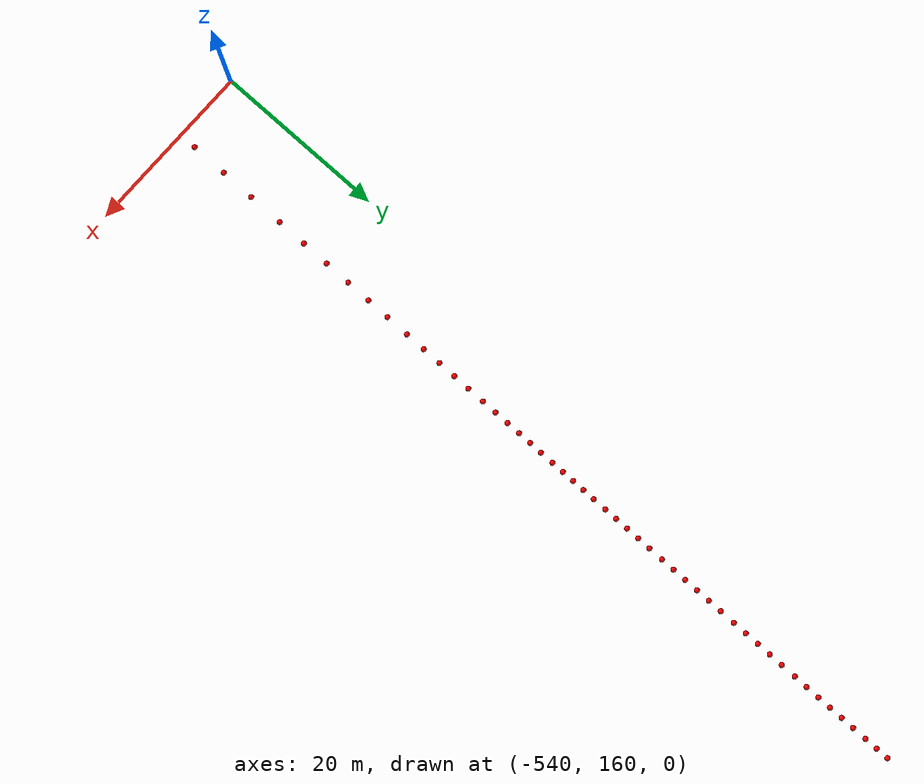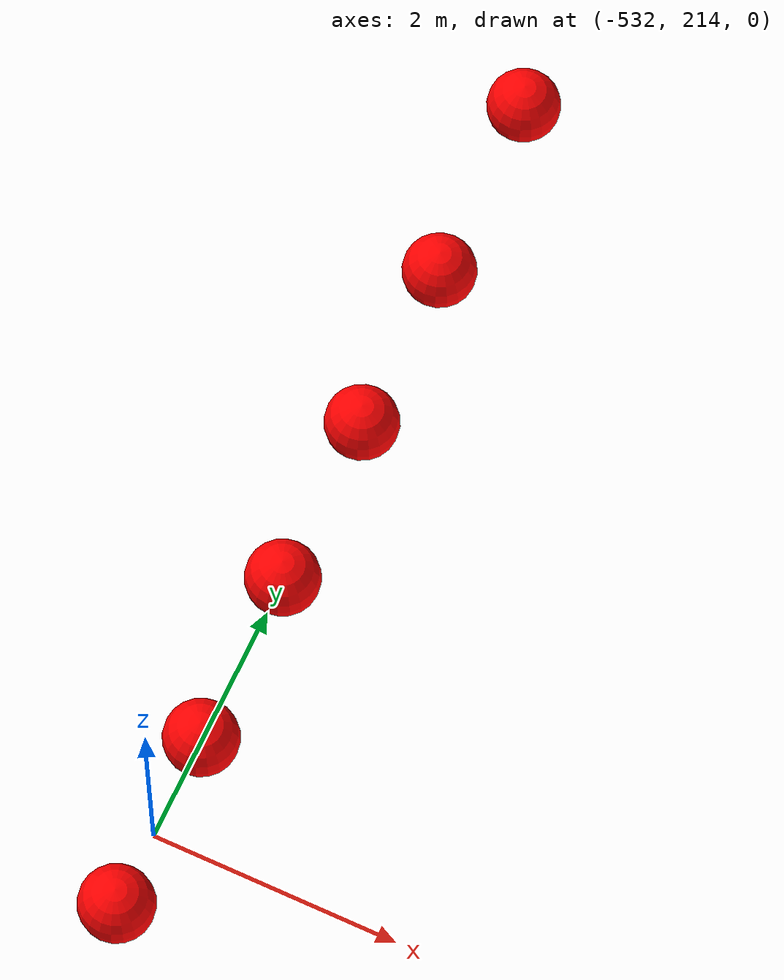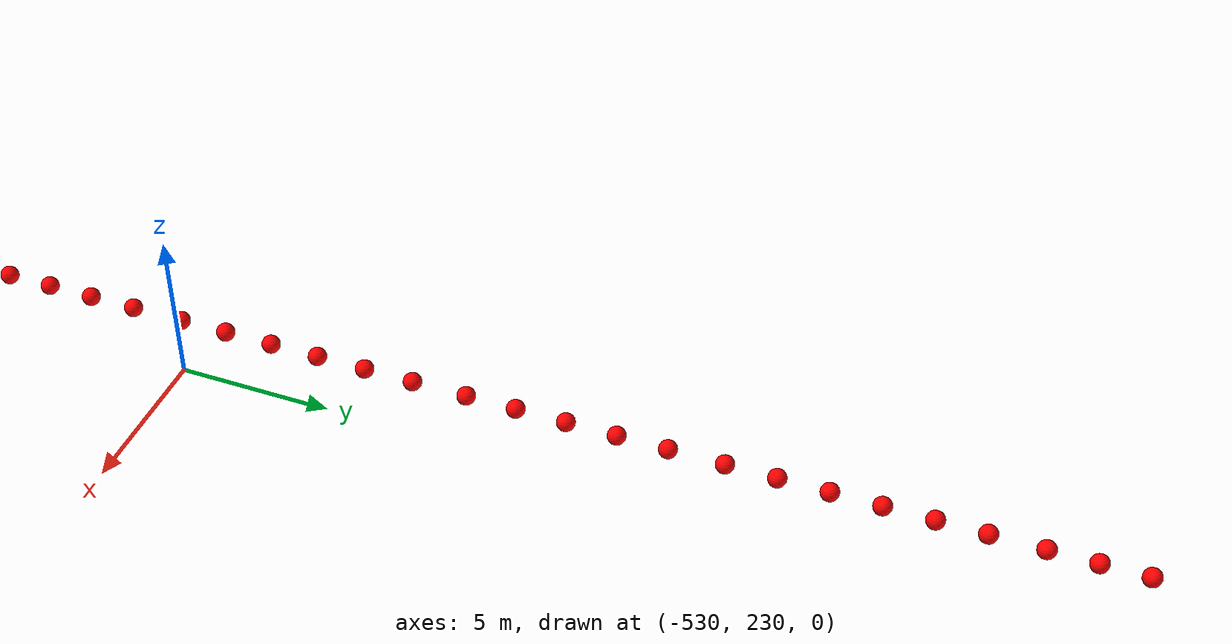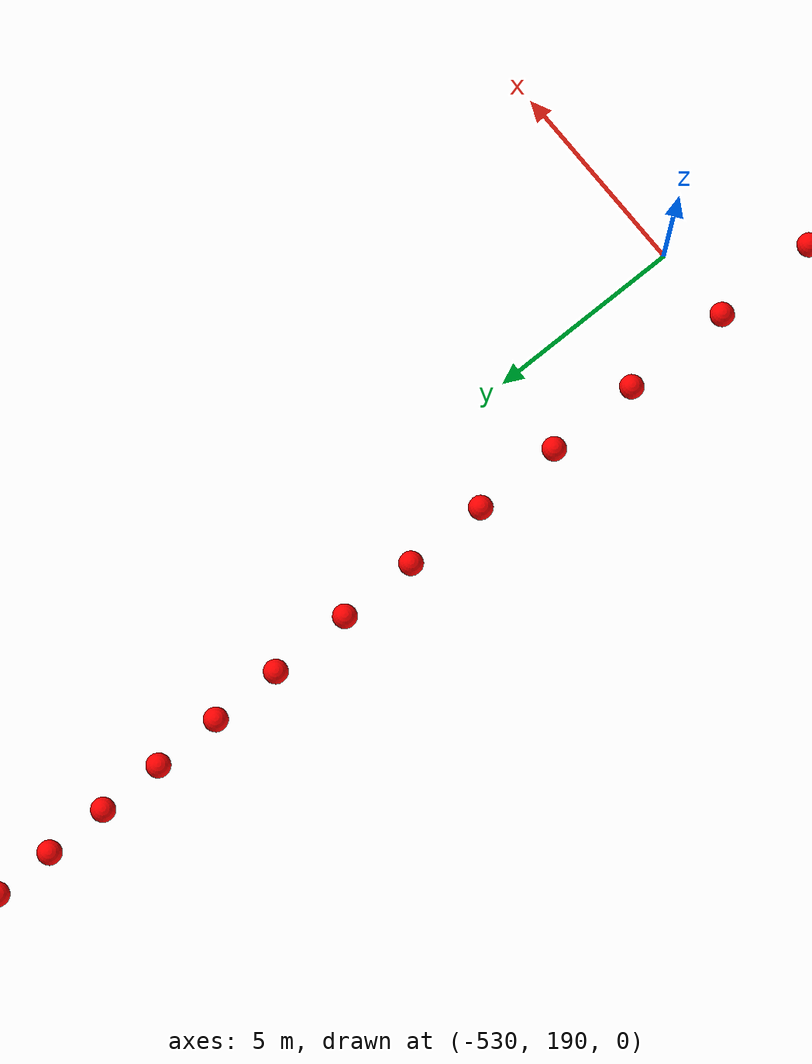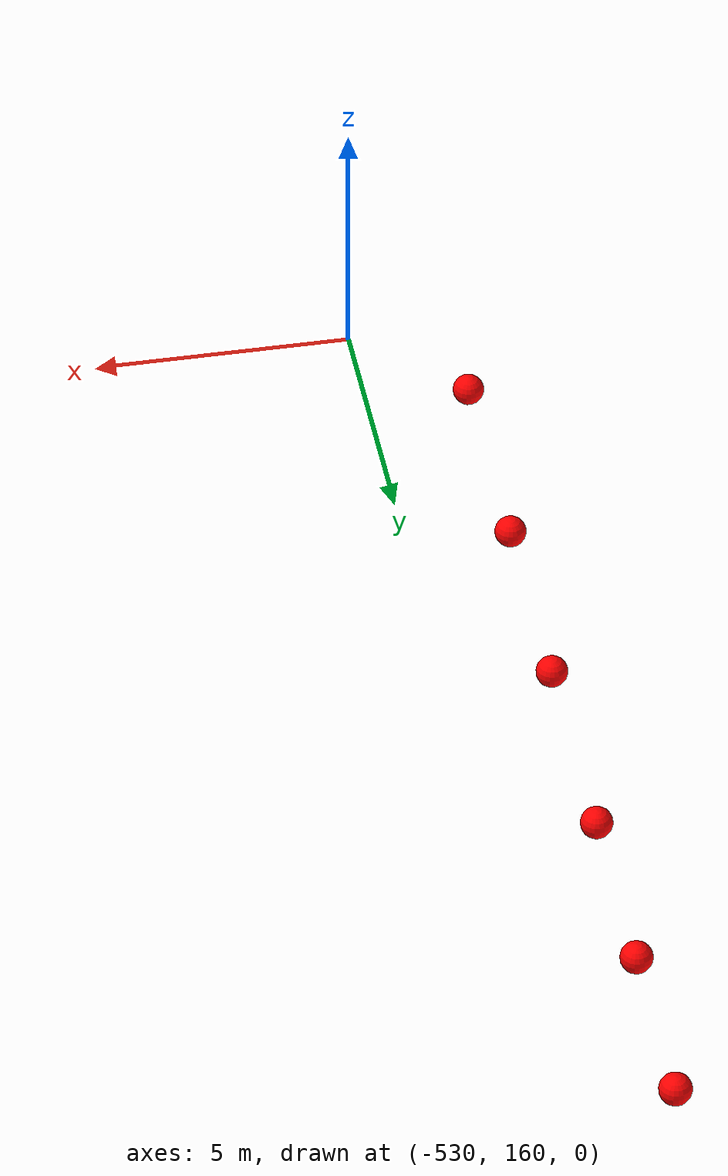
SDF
<sdf version="1.9">
 <world name="sydney_regatta">
  <physics name="4ms" type="dart">
   <max_step_size>0.001</max_step_size>
   <real_time_factor>1.0</real_time_factor>
  </physics>
  <plugin filename="gz-sim-physics-system" name="gz::sim::systems::Physics"/>
  <plugin filename="gz-sim-user-commands-system" name="gz::sim::systems::UserCommands"/>
  <plugin filename="gz-sim-sensors-system" name="gz::sim::systems::Sensors">
   <render_engine>ogre2</render_engine>
   <disable_on_drained_battery>true</disable_on_drained_battery>
  </plugin>
  <plugin filename="gz-sim-imu-system" name="gz::sim::systems::Imu"/>
  <plugin filename="gz-sim-magnetometer-system" name="gz::sim::systems::Magnetometer"/>
  <plugin filename="gz-sim-forcetorque-system" name="gz::sim::systems::ForceTorque"/>
  <plugin filename="gz-sim-particle-emitter-system" name="gz::sim::systems::ParticleEmitter"/>
  <plugin filename="gz-sim-scene-broadcaster-system" name="gz::sim::systems::SceneBroadcaster"/>
  <plugin filename="gz-sim-contact-system" name="gz::sim::systems::Contact"/>
  <plugin filename="gz-sim-navsat-system" name="gz::sim::systems::NavSat"/>
  <scene><grid>false</grid><ambient>1.0 1.0 1.0</ambient><background>0.8 0.8 0.8</background></scene>
  <spherical_coordinates>
   <surface_model>EARTH_WGS84</surface_model>
   <world_frame_orientation>ENU</world_frame_orientation>
   <latitude_deg>-33.724223</latitude_deg>
   <longitude_deg>150.679736</longitude_deg>
   <elevation>0.0</elevation>
   <heading_deg>0.0</heading_deg>
  </spherical_coordinates>
  <light type="directional" name="sun">
   <cast_shadows>false</cast_shadows>
   <pose>0 0 10 0 0 0</pose>
   <diffuse>0.8 0.8 0.8 1</diffuse>
   <specular>0.2 0.2 0.2 1</specular>
   <attenuation>
    <range>1000</range>
    <constant>0.9</constant>
    <linear>0.01</linear>
    <quadratic>0.001</quadratic>
   </attenuation>
   <direction>-0.5 0.1 -0.9</direction>
  </light>
  <model name="path_1">
   <static>true</static>
   <pose>-532 161.992 0.1 0 0 0</pose>
   <link name="link">
    <visual name="visual">
     <geometry><sphere><radius>0.3</radius></sphere></geometry>
     <material><ambient>1 0 0 1</ambient><diffuse>1 0 0 1</diffuse></material>
    </visual>
   </link>
  </model>
  <model name="path_2">
   <static>true</static>
   <pose>-532 166.234 0.1 0 0 0</pose>
   <link name="link">
    <visual name="visual">
     <geometry><sphere><radius>0.3</radius></sphere></geometry>
     <material><ambient>1 0 0 1</ambient><diffuse>1 0 0 1</diffuse></material>
    </visual>
   </link>
  </model>
  <model name="path_3">
   <static>true</static>
   <pose>-532 170.227 0.1 0 0 0</pose>
   <link name="link">
    <visual name="visual">
     <geometry><sphere><radius>0.3</radius></sphere></geometry>
     <material><ambient>1 0 0 1</ambient><diffuse>1 0 0 1</diffuse></material>
    </visual>
   </link>
  </model>
  <model name="path_4">
   <static>true</static>
   <pose>-532 174.345 0.1 0 0 0</pose>
   <link name="link">
    <visual name="visual">
     <geometry><sphere><radius>0.3</radius></sphere></geometry>
     <material><ambient>1 0 0 1</ambient><diffuse>1 0 0 1</diffuse></material>
    </visual>
   </link>
  </model>
  <model name="path_5">
   <static>true</static>
   <pose>-532 177.854 0.1 0 0 0</pose>
   <link name="link">
    <visual name="visual">
     <geometry><sphere><radius>0.3</radius></sphere></geometry>
     <material><ambient>1 0 0 1</ambient><diffuse>1 0 0 1</diffuse></material>
    </visual>
   </link>
  </model>
  <model name="path_6">
   <static>true</static>
   <pose>-532 181.149 0.1 0 0 0</pose>
   <link name="link">
    <visual name="visual">
     <geometry><sphere><radius>0.3</radius></sphere></geometry>
     <material><ambient>1 0 0 1</ambient><diffuse>1 0 0 1</diffuse></material>
    </visual>
   </link>
  </model>
  <model name="path_7">
   <static>true</static>
   <pose>-532 184.244 0.1 0 0 0</pose>
   <link name="link">
    <visual name="visual">
     <geometry><sphere><radius>0.3</radius></sphere></geometry>
     <material><ambient>1 0 0 1</ambient><diffuse>1 0 0 1</diffuse></material>
    </visual>
   </link>
  </model>
  <model name="path_8">
   <static>true</static>
   <pose>-532 187.148 0.1 0 0 0</pose>
   <link name="link">
    <visual name="visual">
     <geometry><sphere><radius>0.3</radius></sphere></geometry>
     <material><ambient>1 0 0 1</ambient><diffuse>1 0 0 1</diffuse></material>
    </visual>
   </link>
  </model>
  <model name="path_9">
   <static>true</static>
   <pose>-532 189.875 0.1 0 0 0</pose>
   <link name="link">
    <visual name="visual">
     <geometry><sphere><radius>0.3</radius></sphere></geometry>
     <material><ambient>1 0 0 1</ambient><diffuse>1 0 0 1</diffuse></material>
    </visual>
   </link>
  </model>
  <model name="path_10">
   <static>true</static>
   <pose>-532 192.682 0.1 0 0 0</pose>
   <link name="link">
    <visual name="visual">
     <geometry><sphere><radius>0.3</radius></sphere></geometry>
     <material><ambient>1 0 0 1</ambient><diffuse>1 0 0 1</diffuse></material>
    </visual>
   </link>
  </model>
  <model name="path_11">
   <static>true</static>
   <pose>-532 195.073 0.1 0 0 0</pose>
   <link name="link">
    <visual name="visual">
     <geometry><sphere><radius>0.3</radius></sphere></geometry>
     <material><ambient>1 0 0 1</ambient><diffuse>1 0 0 1</diffuse></material>
    </visual>
   </link>
  </model>
  <model name="path_12">
   <static>true</static>
   <pose>-532 197.321 0.1 0 0 0</pose>
   <link name="link">
    <visual name="visual">
     <geometry><sphere><radius>0.3</radius></sphere></geometry>
     <material><ambient>1 0 0 1</ambient><diffuse>1 0 0 1</diffuse></material>
    </visual>
   </link>
  </model>
  <model name="path_13">
   <static>true</static>
   <pose>-532 199.439 0.1 0 0 0</pose>
   <link name="link">
    <visual name="visual">
     <geometry><sphere><radius>0.3</radius></sphere></geometry>
     <material><ambient>1 0 0 1</ambient><diffuse>1 0 0 1</diffuse></material>
    </visual>
   </link>
  </model>
  <model name="path_14">
   <static>true</static>
   <pose>-532 201.438 0.1 0 0 0</pose>
   <link name="link">
    <visual name="visual">
     <geometry><sphere><radius>0.3</radius></sphere></geometry>
     <material><ambient>1 0 0 1</ambient><diffuse>1 0 0 1</diffuse></material>
    </visual>
   </link>
  </model>
  <model name="path_15">
   <static>true</static>
   <pose>-532 203.513 0.1 0 0 0</pose>
   <link name="link">
    <visual name="visual">
     <geometry><sphere><radius>0.3</radius></sphere></geometry>
     <material><ambient>1 0 0 1</ambient><diffuse>1 0 0 1</diffuse></material>
    </visual>
   </link>
  </model>
  <model name="path_16">
   <static>true</static>
   <pose>-532 205.3 0.1 0 0 0</pose>
   <link name="link">
    <visual name="visual">
     <geometry><sphere><radius>0.3</radius></sphere></geometry>
     <material><ambient>1 0 0 1</ambient><diffuse>1 0 0 1</diffuse></material>
    </visual>
   </link>
  </model>
  <model name="path_17">
   <static>true</static>
   <pose>-532 207.004 0.1 0 0 0</pose>
   <link name="link">
    <visual name="visual">
     <geometry><sphere><radius>0.3</radius></sphere></geometry>
     <material><ambient>1 0 0 1</ambient><diffuse>1 0 0 1</diffuse></material>
    </visual>
   </link>
  </model>
  <model name="path_18">
   <static>true</static>
   <pose>-532 208.637 0.1 0 0 0</pose>
   <link name="link">
    <visual name="visual">
     <geometry><sphere><radius>0.3</radius></sphere></geometry>
     <material><ambient>1 0 0 1</ambient><diffuse>1 0 0 1</diffuse></material>
    </visual>
   </link>
  </model>
  <model name="path_19">
   <static>true</static>
   <pose>-532 210.21 0.1 0 0 0</pose>
   <link name="link">
    <visual name="visual">
     <geometry><sphere><radius>0.3</radius></sphere></geometry>
     <material><ambient>1 0 0 1</ambient><diffuse>1 0 0 1</diffuse></material>
    </visual>
   </link>
  </model>
  <model name="path_20">
   <static>true</static>
   <pose>-532 211.735 0.1 0 0 0</pose>
   <link name="link">
    <visual name="visual">
     <geometry><sphere><radius>0.3</radius></sphere></geometry>
     <material><ambient>1 0 0 1</ambient><diffuse>1 0 0 1</diffuse></material>
    </visual>
   </link>
  </model>
  <model name="path_21">
   <static>true</static>
   <pose>-532 213.37 0.1 0 0 0</pose>
   <link name="link">
    <visual name="visual">
     <geometry><sphere><radius>0.3</radius></sphere></geometry>
     <material><ambient>1 0 0 1</ambient><diffuse>1 0 0 1</diffuse></material>
    </visual>
   </link>
  </model>
  <model name="path_22">
   <static>true</static>
   <pose>-532 214.831 0.1 0 0 0</pose>
   <link name="link">
    <visual name="visual">
     <geometry><sphere><radius>0.3</radius></sphere></geometry>
     <material><ambient>1 0 0 1</ambient><diffuse>1 0 0 1</diffuse></material>
    </visual>
   </link>
  </model>
  <model name="path_23">
   <static>true</static>
   <pose>-532 216.281 0.1 0 0 0</pose>
   <link name="link">
    <visual name="visual">
     <geometry><sphere><radius>0.3</radius></sphere></geometry>
     <material><ambient>1 0 0 1</ambient><diffuse>1 0 0 1</diffuse></material>
    </visual>
   </link>
  </model>
  <model name="path_24">
   <static>true</static>
   <pose>-532 217.729 0.1 0 0 0</pose>
   <link name="link">
    <visual name="visual">
     <geometry><sphere><radius>0.3</radius></sphere></geometry>
     <material><ambient>1 0 0 1</ambient><diffuse>1 0 0 1</diffuse></material>
    </visual>
   </link>
  </model>
  <model name="path_25">
   <static>true</static>
   <pose>-532 219.188 0.1 0 0 0</pose>
   <link name="link">
    <visual name="visual">
     <geometry><sphere><radius>0.3</radius></sphere></geometry>
     <material><ambient>1 0 0 1</ambient><diffuse>1 0 0 1</diffuse></material>
    </visual>
   </link>
  </model>
  <model name="path_26">
   <static>true</static>
   <pose>-532 220.82 0.1 0 0 0</pose>
   <link name="link">
    <visual name="visual">
     <geometry><sphere><radius>0.3</radius></sphere></geometry>
     <material><ambient>1 0 0 1</ambient><diffuse>1 0 0 1</diffuse></material>
    </visual>
   </link>
  </model>
  <model name="path_27">
   <static>true</static>
   <pose>-532 222.332 0.1 0 0 0</pose>
   <link name="link">
    <visual name="visual">
     <geometry><sphere><radius>0.3</radius></sphere></geometry>
     <material><ambient>1 0 0 1</ambient><diffuse>1 0 0 1</diffuse></material>
    </visual>
   </link>
  </model>
  <model name="path_28">
   <static>true</static>
   <pose>-532 223.869 0.1 0 0 0</pose>
   <link name="link">
    <visual name="visual">
     <geometry><sphere><radius>0.3</radius></sphere></geometry>
     <material><ambient>1 0 0 1</ambient><diffuse>1 0 0 1</diffuse></material>
    </visual>
   </link>
  </model>
  <model name="path_29">
   <static>true</static>
   <pose>-532 225.429 0.1 0 0 0</pose>
   <link name="link">
    <visual name="visual">
     <geometry><sphere><radius>0.3</radius></sphere></geometry>
     <material><ambient>1 0 0 1</ambient><diffuse>1 0 0 1</diffuse></material>
    </visual>
   </link>
  </model>
  <model name="path_30">
   <static>true</static>
   <pose>-532 227.01 0.1 0 0 0</pose>
   <link name="link">
    <visual name="visual">
     <geometry><sphere><radius>0.3</radius></sphere></geometry>
     <material><ambient>1 0 0 1</ambient><diffuse>1 0 0 1</diffuse></material>
    </visual>
   </link>
  </model>
  <model name="path_31">
   <static>true</static>
   <pose>-532 228.77 0.1 0 0 0</pose>
   <link name="link">
    <visual name="visual">
     <geometry><sphere><radius>0.3</radius></sphere></geometry>
     <material><ambient>1 0 0 1</ambient><diffuse>1 0 0 1</diffuse></material>
    </visual>
   </link>
  </model>
  <model name="path_32">
   <static>true</static>
   <pose>-532 230.387 0.1 0 0 0</pose>
   <link name="link">
    <visual name="visual">
     <geometry><sphere><radius>0.3</radius></sphere></geometry>
     <material><ambient>1 0 0 1</ambient><diffuse>1 0 0 1</diffuse></material>
    </visual>
   </link>
  </model>
  <model name="path_33">
   <static>true</static>
   <pose>-532 232.018 0.1 0 0 0</pose>
   <link name="link">
    <visual name="visual">
     <geometry><sphere><radius>0.3</radius></sphere></geometry>
     <material><ambient>1 0 0 1</ambient><diffuse>1 0 0 1</diffuse></material>
    </visual>
   </link>
  </model>
  <model name="path_34">
   <static>true</static>
   <pose>-532 233.659 0.1 0 0 0</pose>
   <link name="link">
    <visual name="visual">
     <geometry><sphere><radius>0.3</radius></sphere></geometry>
     <material><ambient>1 0 0 1</ambient><diffuse>1 0 0 1</diffuse></material>
    </visual>
   </link>
  </model>
  <model name="path_35">
   <static>true</static>
   <pose>-532 235.31 0.1 0 0 0</pose>
   <link name="link">
    <visual name="visual">
     <geometry><sphere><radius>0.3</radius></sphere></geometry>
     <material><ambient>1 0 0 1</ambient><diffuse>1 0 0 1</diffuse></material>
    </visual>
   </link>
  </model>
  <model name="path_36">
   <static>true</static>
   <pose>-532 236.967 0.1 0 0 0</pose>
   <link name="link">
    <visual name="visual">
     <geometry><sphere><radius>0.3</radius></sphere></geometry>
     <material><ambient>1 0 0 1</ambient><diffuse>1 0 0 1</diffuse></material>
    </visual>
   </link>
  </model>
  <model name="path_37">
   <static>true</static>
   <pose>-532 238.794 0.1 0 0 0</pose>
   <link name="link">
    <visual name="visual">
     <geometry><sphere><radius>0.3</radius></sphere></geometry>
     <material><ambient>1 0 0 1</ambient><diffuse>1 0 0 1</diffuse></material>
    </visual>
   </link>
  </model>
  <model name="path_38">
   <static>true</static>
   <pose>-532 240.457 0.1 0 0 0</pose>
   <link name="link">
    <visual name="visual">
     <geometry><sphere><radius>0.3</radius></sphere></geometry>
     <material><ambient>1 0 0 1</ambient><diffuse>1 0 0 1</diffuse></material>
    </visual>
   </link>
  </model>
  <model name="path_39">
   <static>true</static>
   <pose>-532 242.12 0.1 0 0 0</pose>
   <link name="link">
    <visual name="visual">
     <geometry><sphere><radius>0.3</radius></sphere></geometry>
     <material><ambient>1 0 0 1</ambient><diffuse>1 0 0 1</diffuse></material>
    </visual>
   </link>
  </model>
  <model name="path_40">
   <static>true</static>
   <pose>-532 243.78 0.1 0 0 0</pose>
   <link name="link">
    <visual name="visual">
     <geometry><sphere><radius>0.3</radius></sphere></geometry>
     <material><ambient>1 0 0 1</ambient><diffuse>1 0 0 1</diffuse></material>
    </visual>
   </link>
  </model>
  <model name="path_41">
   <static>true</static>
   <pose>-532 245.434 0.1 0 0 0</pose>
   <link name="link">
    <visual name="visual">
     <geometry><sphere><radius>0.3</radius></sphere></geometry>
     <material><ambient>1 0 0 1</ambient><diffuse>1 0 0 1</diffuse></material>
    </visual>
   </link>
  </model>
  <model name="path_42">
   <static>true</static>
   <pose>-532 247.245 0.1 0 0 0</pose>
   <link name="link">
    <visual name="visual">
     <geometry><sphere><radius>0.3</radius></sphere></geometry>
     <material><ambient>1 0 0 1</ambient><diffuse>1 0 0 1</diffuse></material>
    </visual>
   </link>
  </model>
  <model name="path_43">
   <static>true</static>
   <pose>-532 248.881 0.1 0 0 0</pose>
   <link name="link">
    <visual name="visual">
     <geometry><sphere><radius>0.3</radius></sphere></geometry>
     <material><ambient>1 0 0 1</ambient><diffuse>1 0 0 1</diffuse></material>
    </visual>
   </link>
  </model>
  <model name="path_44">
   <static>true</static>
   <pose>-532 250.504 0.1 0 0 0</pose>
   <link name="link">
    <visual name="visual">
     <geometry><sphere><radius>0.3</radius></sphere></geometry>
     <material><ambient>1 0 0 1</ambient><diffuse>1 0 0 1</diffuse></material>
    </visual>
   </link>
  </model>
  <model name="path_45">
   <static>true</static>
   <pose>-532 252.112 0.1 0 0 0</pose>
   <link name="link">
    <visual name="visual">
     <geometry><sphere><radius>0.3</radius></sphere></geometry>
     <material><ambient>1 0 0 1</ambient><diffuse>1 0 0 1</diffuse></material>
    </visual>
   </link>
  </model>
  <model name="path_46">
   <static>true</static>
   <pose>-532 253.704 0.1 0 0 0</pose>
   <link name="link">
    <visual name="visual">
     <geometry><sphere><radius>0.3</radius></sphere></geometry>
     <material><ambient>1 0 0 1</ambient><diffuse>1 0 0 1</diffuse></material>
    </visual>
   </link>
  </model>
  <model name="path_47">
   <static>true</static>
   <pose>-532 255.275 0.1 0 0 0</pose>
   <link name="link">
    <visual name="visual">
     <geometry><sphere><radius>0.3</radius></sphere></geometry>
     <material><ambient>1 0 0 1</ambient><diffuse>1 0 0 1</diffuse></material>
    </visual>
   </link>
  </model>
  <model name="path_48">
   <static>true</static>
   <pose>-532 256.979 0.1 0 0 0</pose>
   <link name="link">
    <visual name="visual">
     <geometry><sphere><radius>0.3</radius></sphere></geometry>
     <material><ambient>1 0 0 1</ambient><diffuse>1 0 0 1</diffuse></material>
    </visual>
   </link>
  </model>
  <model name="path_49">
   <static>true</static>
   <pose>-532 258.503 0.1 0 0 0</pose>
   <link name="link">
    <visual name="visual">
     <geometry><sphere><radius>0.3</radius></sphere></geometry>
     <material><ambient>1 0 0 1</ambient><diffuse>1 0 0 1</diffuse></material>
    </visual>
   </link>
  </model>
  <model name="path_50">
   <static>true</static>
   <pose>-532 260 0.1 0 0 0</pose>
   <link name="link">
    <visual name="visual">
     <geometry><sphere><radius>0.3</radius></sphere></geometry>
     <material><ambient>1 0 0 1</ambient><diffuse>1 0 0 1</diffuse></material>
    </visual>
   </link>
  </model>
  <plugin filename="libUSVWind.so" name="vrx::USVWind">
   <wind_obj>
    <name>wamv</name>
    <link_name>wamv/base_link</link_name>
    <coeff_vector>.5 .5 .33</coeff_vector>
   </wind_obj>
   <wind_direction>0.0</wind_direction>
   <wind_mean_velocity>0.0</wind_mean_velocity>
   <var_wind_gain_constants>0</var_wind_gain_constants>
   <var_wind_time_constants>2</var_wind_time_constants>
   <random_seed>0.00</random_seed>
   <update_rate>10</update_rate>
   <topic_wind_speed>/vrx/debug/wind/speed</topic_wind_speed>
   <topic_wind_direction>/vrx/debug/wind/direction</topic_wind_direction>
  </plugin>
  <plugin filename="libPublisherPlugin.so" name="vrx::PublisherPlugin">
   <message type="gz.msgs.Param" topic="/vrx/wavefield/parameters" every="2.0">params {
          key: "direction"
          value {
            type: DOUBLE
            double_value: 0.0
          }
        }
        params {
          key: "gain"
          value {
            type: DOUBLE
            double_value: 0.3
          }
        }
        params {
          key: "period"
          value {
            type: DOUBLE
            double_value: 5
          }
        }
        params {
          key: "steepness"
          value {
            type: DOUBLE
            double_value: 0
          }
        }</message>
  </plugin>
 </world>
</sdf>
